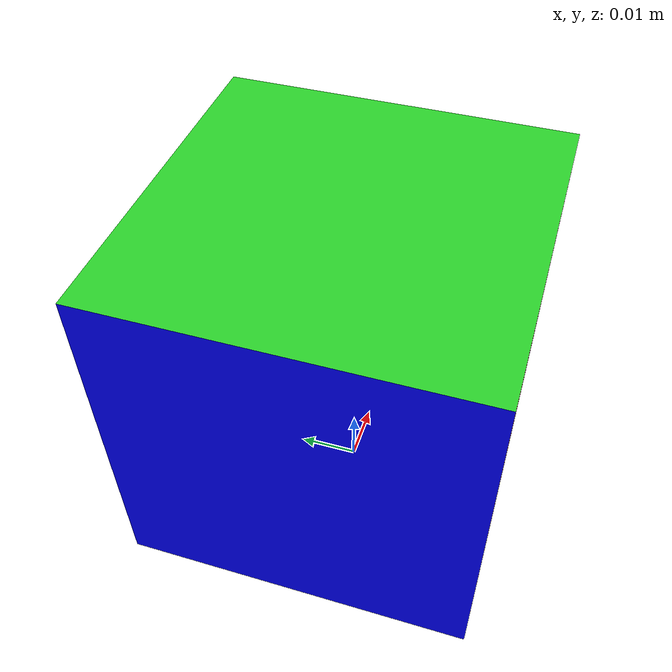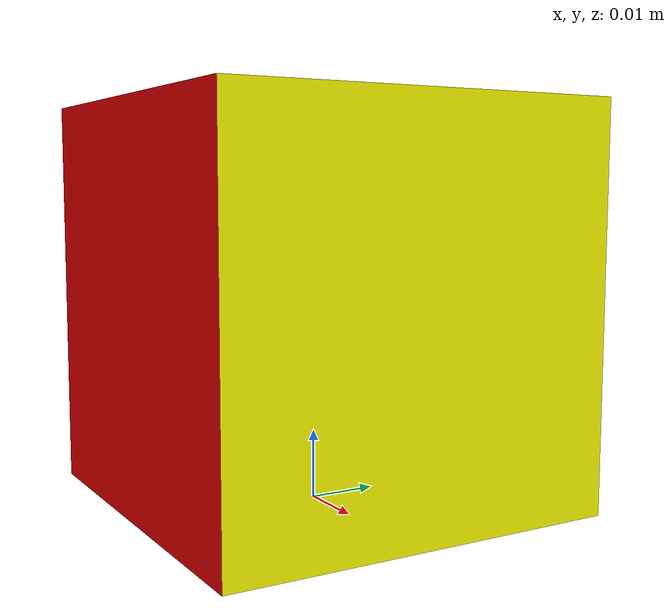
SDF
<?xml version="1.0" ?>
<sdf version="1.4">
  <model name="cube">
    <link name="cube_link">
      <inertial>
        <pose>-0.00 0.0 0.00 0 0 0</pose>
        <mass>0.8</mass>
        <inertia>
          <ixx>0.01667</ixx>
	  <ixy>0.0</ixy>
	  <ixz>0.0</ixz>
	  <iyy>0.01667</iyy>
	  <iyz>0.0</iyz>
	  <izz>0.01667</izz>
	</inertia>
      </inertial>

      <visual name="cube_visual">
        <pose>-0.03 0.03 0 1.57079632679489 0 0 </pose>
        <material>
          <lighting>1</lighting>
        </material>
        <geometry>
          <mesh>
            <uri>model://cube/meshes/cube.dae</uri>
	    <scale>0.0022 0.0022 0.0022</scale>
          </mesh>
        </geometry>
      </visual>

      <collision name="cube_collision">
        <pose>-0.0 0.0 0.03 0 0.0 0.0</pose>
        <geometry>
          <box>
            <size>0.056 0.056 0.056</size>
          </box>
        </geometry>
        <max_contacts>10</max_contacts>
        <surface>
          <contact>
            <ode/>
          </contact>
          <bounce/>
          <friction>
            <torsional>
              <ode/>
            </torsional>
            <ode>
              <mu>1</mu>
              <mu2>1</mu2>
            </ode>
          </friction>
        </surface>
      </collision>
      <self_collide>0</self_collide>
      <kinematic>0</kinematic>
    </link>
  </model>
</sdf>
